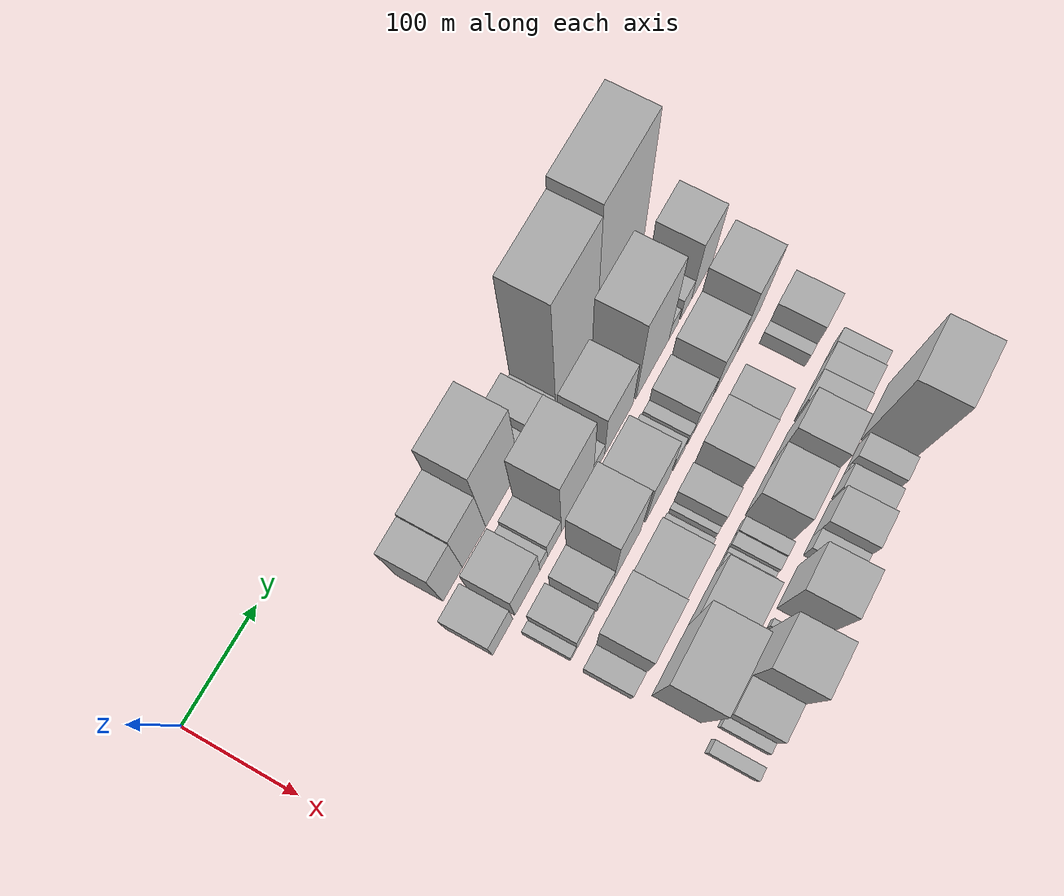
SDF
<sdf version="1.6">
 <world name="default">
  <model name="building_33">
   <static>1</static>
   <pose>100.0000 183.3700 0 0.000000 0.000000 0.000000</pose>
   <link name="link">
    <pose>0 0 48.00 0 0 0</pose>
    <collision name="collision"><geometry><box><size>40.0000 28.8230 96.0000</size></box></geometry></collision>
    <visual name="visual">
     <cast_shadows>0</cast_shadows>
     <geometry><box><size>40.0000 28.8230 96.0000</size></box></geometry>
     <material>
      <script>
       <uri>model://HANNAS_wall/materials/scripts</uri>
       <uri>model://HANNAS_wall/materials/textures</uri>
       <name>vrc/HANNAS_wall</name>
      </script>
     </material>
    </visual>
   </link>
  </model>
  <model name="building_34">
   <static>1</static>
   <pose>100.0000 215.3747 0 0.000000 0.000000 0.000000</pose>
   <link name="link">
    <pose>0 0 51.00 0 0 0</pose>
    <collision name="collision"><geometry><box><size>40.0000 35.1864 102.0000</size></box></geometry></collision>
    <visual name="visual">
     <cast_shadows>0</cast_shadows>
     <geometry><box><size>40.0000 35.1864 102.0000</size></box></geometry>
     <material>
      <script>
       <uri>model://HANNAS_wall/materials/scripts</uri>
       <uri>model://HANNAS_wall/materials/textures</uri>
       <name>vrc/HANNAS_wall</name>
      </script>
     </material>
    </visual>
   </link>
  </model>
  <model name="building_35">
   <static>1</static>
   <pose>100.0000 258.9601 0 0.000000 0.000000 0.000000</pose>
   <link name="link">
    <pose>0 0 75.00 0 0 0</pose>
    <collision name="collision"><geometry><box><size>40.0000 51.9845 150.0000</size></box></geometry></collision>
    <visual name="visual">
     <cast_shadows>0</cast_shadows>
     <geometry><box><size>40.0000 51.9845 150.0000</size></box></geometry>
     <material>
      <script>
       <uri>model://HANNAS_wall/materials/scripts</uri>
       <uri>model://HANNAS_wall/materials/textures</uri>
       <name>vrc/HANNAS_wall</name>
      </script>
     </material>
    </visual>
   </link>
  </model>
  <model name="building_36">
   <static>1</static>
   <pose>100.0000 292.0350 0 0.000000 0.000000 0.000000</pose>
   <link name="link">
    <pose>0 0 7.50 0 0 0</pose>
    <collision name="collision"><geometry><box><size>40.0000 6.1653 15.0000</size></box></geometry></collision>
    <visual name="visual">
     <cast_shadows>0</cast_shadows>
     <geometry><box><size>40.0000 6.1653 15.0000</size></box></geometry>
     <material>
      <script>
       <uri>model://HANNAS_wall/materials/scripts</uri>
       <uri>model://HANNAS_wall/materials/textures</uri>
       <name>vrc/HANNAS_wall</name>
      </script>
     </material>
    </visual>
   </link>
  </model>
  <model name="building_37">
   <static>1</static>
   <pose>100.0000 300.3955 0 0.000000 0.000000 0.000000</pose>
   <link name="link">
    <pose>0 0 12.00 0 0 0</pose>
    <collision name="collision"><geometry><box><size>40.0000 10.5556 24.0000</size></box></geometry></collision>
    <visual name="visual">
     <cast_shadows>0</cast_shadows>
     <geometry><box><size>40.0000 10.5556 24.0000</size></box></geometry>
     <material>
      <script>
       <uri>model://HANNAS_wall/materials/scripts</uri>
       <uri>model://HANNAS_wall/materials/textures</uri>
       <name>vrc/HANNAS_wall</name>
      </script>
     </material>
    </visual>
   </link>
  </model>
  <model name="building_38">
   <static>1</static>
   <pose>100.0000 318.9849 0 0.000000 0.000000 0.000000</pose>
   <link name="link">
    <pose>0 0 24.00 0 0 0</pose>
    <collision name="collision"><geometry><box><size>40.0000 26.6233 48.0000</size></box></geometry></collision>
    <visual name="visual">
     <cast_shadows>0</cast_shadows>
     <geometry><box><size>40.0000 26.6233 48.0000</size></box></geometry>
     <material>
      <script>
       <uri>model://HANNAS_wall/materials/scripts</uri>
       <uri>model://HANNAS_wall/materials/textures</uri>
       <name>vrc/HANNAS_wall</name>
      </script>
     </material>
    </visual>
   </link>
  </model>
  <model name="building_39">
   <static>1</static>
   <pose>100.0000 337.2926 0 0.000000 0.000000 0.000000</pose>
   <link name="link">
    <pose>0 0 10.50 0 0 0</pose>
    <collision name="collision"><geometry><box><size>40.0000 9.9919 21.0000</size></box></geometry></collision>
    <visual name="visual">
     <cast_shadows>0</cast_shadows>
     <geometry><box><size>40.0000 9.9919 21.0000</size></box></geometry>
     <material>
      <script>
       <uri>model://HANNAS_wall/materials/scripts</uri>
       <uri>model://HANNAS_wall/materials/textures</uri>
       <name>vrc/HANNAS_wall</name>
      </script>
     </material>
    </visual>
   </link>
  </model>
  <model name="building_40">
   <static>1</static>
   <pose>100.0000 375.6678 0 0.000000 0.000000 0.000000</pose>
   <link name="link">
    <pose>0 0 99.00 0 0 0</pose>
    <collision name="collision"><geometry><box><size>40.0000 66.7586 198.0000</size></box></geometry></collision>
    <visual name="visual">
     <cast_shadows>0</cast_shadows>
     <geometry><box><size>40.0000 66.7586 198.0000</size></box></geometry>
     <material>
      <script>
       <uri>model://HANNAS_wall/materials/scripts</uri>
       <uri>model://HANNAS_wall/materials/textures</uri>
       <name>vrc/HANNAS_wall</name>
      </script>
     </material>
    </visual>
   </link>
  </model>
  <model name="building_41">
   <static>1</static>
   <pose>100.0000 446.9654 0 0.000000 0.000000 0.000000</pose>
   <link name="link">
    <pose>0 0 106.50 0 0 0</pose>
    <collision name="collision"><geometry><box><size>40.0000 75.8365 213.0000</size></box></geometry></collision>
    <visual name="visual">
     <cast_shadows>0</cast_shadows>
     <geometry><box><size>40.0000 75.8365 213.0000</size></box></geometry>
     <material>
      <script>
       <uri>model://HANNAS_wall/materials/scripts</uri>
       <uri>model://HANNAS_wall/materials/textures</uri>
       <name>vrc/HANNAS_wall</name>
      </script>
     </material>
    </visual>
   </link>
  </model>
  <model name="building_83">
   <static>1</static>
   <pose>152.0000 167.3471 0 0.000000 0.000000 0.000000</pose>
   <link name="link">
    <pose>0 0 25.50 0 0 0</pose>
    <collision name="collision"><geometry><box><size>40.0000 30.2939 51.0000</size></box></geometry></collision>
    <visual name="visual">
     <cast_shadows>0</cast_shadows>
     <geometry><box><size>40.0000 30.2939 51.0000</size></box></geometry>
     <material>
      <script>
       <uri>model://HANNAS_wall/materials/scripts</uri>
       <uri>model://HANNAS_wall/materials/textures</uri>
       <name>vrc/HANNAS_wall</name>
      </script>
     </material>
    </visual>
   </link>
  </model>
  <model name="building_84">
   <static>1</static>
   <pose>152.0000 204.5459 0 0.000000 0.000000 0.000000</pose>
   <link name="link">
    <pose>0 0 33.00 0 0 0</pose>
    <collision name="collision"><geometry><box><size>40.0000 38.1037 66.0000</size></box></geometry></collision>
    <visual name="visual">
     <cast_shadows>0</cast_shadows>
     <geometry><box><size>40.0000 38.1037 66.0000</size></box></geometry>
     <material>
      <script>
       <uri>model://HANNAS_wall/materials/scripts</uri>
       <uri>model://HANNAS_wall/materials/textures</uri>
       <name>vrc/HANNAS_wall</name>
      </script>
     </material>
    </visual>
   </link>
  </model>
  <model name="building_85">
   <static>1</static>
   <pose>152.0000 229.5717 0 0.000000 0.000000 0.000000</pose>
   <link name="link">
    <pose>0 0 13.50 0 0 0</pose>
    <collision name="collision"><geometry><box><size>40.0000 11.9478 27.0000</size></box></geometry></collision>
    <visual name="visual">
     <cast_shadows>0</cast_shadows>
     <geometry><box><size>40.0000 11.9478 27.0000</size></box></geometry>
     <material>
      <script>
       <uri>model://HANNAS_wall/materials/scripts</uri>
       <uri>model://HANNAS_wall/materials/textures</uri>
       <name>vrc/HANNAS_wall</name>
      </script>
     </material>
    </visual>
   </link>
  </model>
  <model name="building_86">
   <static>1</static>
   <pose>152.0000 246.4050 0 0.000000 0.000000 0.000000</pose>
   <link name="link">
    <pose>0 0 19.50 0 0 0</pose>
    <collision name="collision"><geometry><box><size>40.0000 21.7189 39.0000</size></box></geometry></collision>
    <visual name="visual">
     <cast_shadows>0</cast_shadows>
     <geometry><box><size>40.0000 21.7189 39.0000</size></box></geometry>
     <material>
      <script>
       <uri>model://HANNAS_wall/materials/scripts</uri>
       <uri>model://HANNAS_wall/materials/textures</uri>
       <name>vrc/HANNAS_wall</name>
      </script>
     </material>
    </visual>
   </link>
  </model>
  <model name="building_87">
   <static>1</static>
   <pose>152.0000 282.4956 0 0.000000 0.000000 0.000000</pose>
   <link name="link">
    <pose>0 0 69.00 0 0 0</pose>
    <collision name="collision"><geometry><box><size>40.0000 50.4623 138.0000</size></box></geometry></collision>
    <visual name="visual">
     <cast_shadows>0</cast_shadows>
     <geometry><box><size>40.0000 50.4623 138.0000</size></box></geometry>
     <material>
      <script>
       <uri>model://HANNAS_wall/materials/scripts</uri>
       <uri>model://HANNAS_wall/materials/textures</uri>
       <name>vrc/HANNAS_wall</name>
      </script>
     </material>
    </visual>
   </link>
  </model>
  <model name="building_88">
   <static>1</static>
   <pose>152.0000 316.6638 0 0.000000 0.000000 0.000000</pose>
   <link name="link">
    <pose>0 0 15.00 0 0 0</pose>
    <collision name="collision"><geometry><box><size>40.0000 17.8741 30.0000</size></box></geometry></collision>
    <visual name="visual">
     <cast_shadows>0</cast_shadows>
     <geometry><box><size>40.0000 17.8741 30.0000</size></box></geometry>
     <material>
      <script>
       <uri>model://HANNAS_wall/materials/scripts</uri>
       <uri>model://HANNAS_wall/materials/textures</uri>
       <name>vrc/HANNAS_wall</name>
      </script>
     </material>
    </visual>
   </link>
  </model>
  <model name="building_89">
   <static>1</static>
   <pose>152.0000 349.0598 0 0.000000 0.000000 0.000000</pose>
   <link name="link">
    <pose>0 0 45.00 0 0 0</pose>
    <collision name="collision"><geometry><box><size>40.0000 46.9179 90.0000</size></box></geometry></collision>
    <visual name="visual">
     <cast_shadows>0</cast_shadows>
     <geometry><box><size>40.0000 46.9179 90.0000</size></box></geometry>
     <material>
      <script>
       <uri>model://HANNAS_wall/materials/scripts</uri>
       <uri>model://HANNAS_wall/materials/textures</uri>
       <name>vrc/HANNAS_wall</name>
      </script>
     </material>
    </visual>
   </link>
  </model>
  <model name="building_90">
   <static>1</static>
   <pose>152.0000 405.3010 0 0.000000 0.000000 0.000000</pose>
   <link name="link">
    <pose>0 0 75.00 0 0 0</pose>
    <collision name="collision"><geometry><box><size>40.0000 55.5645 150.0000</size></box></geometry></collision>
    <visual name="visual">
     <cast_shadows>0</cast_shadows>
     <geometry><box><size>40.0000 55.5645 150.0000</size></box></geometry>
     <material>
      <script>
       <uri>model://HANNAS_wall/materials/scripts</uri>
       <uri>model://HANNAS_wall/materials/textures</uri>
       <name>vrc/HANNAS_wall</name>
      </script>
     </material>
    </visual>
   </link>
  </model>
  <model name="building_91">
   <static>1</static>
   <pose>152.0000 441.0005 0 0.000000 0.000000 0.000000</pose>
   <link name="link">
    <pose>0 0 15.00 0 0 0</pose>
    <collision name="collision"><geometry><box><size>40.0000 15.8345 30.0000</size></box></geometry></collision>
    <visual name="visual">
     <cast_shadows>0</cast_shadows>
     <geometry><box><size>40.0000 15.8345 30.0000</size></box></geometry>
     <material>
      <script>
       <uri>model://HANNAS_wall/materials/scripts</uri>
       <uri>model://HANNAS_wall/materials/textures</uri>
       <name>vrc/HANNAS_wall</name>
      </script>
     </material>
    </visual>
   </link>
  </model>
  <model name="building_92">
   <static>1</static>
   <pose>152.0000 462.5650 0 0.000000 0.000000 0.000000</pose>
   <link name="link">
    <pose>0 0 18.00 0 0 0</pose>
    <collision name="collision"><geometry><box><size>40.0000 19.2944 36.0000</size></box></geometry></collision>
    <visual name="visual">
     <cast_shadows>0</cast_shadows>
     <geometry><box><size>40.0000 19.2944 36.0000</size></box></geometry>
     <material>
      <script>
       <uri>model://HANNAS_wall/materials/scripts</uri>
       <uri>model://HANNAS_wall/materials/textures</uri>
       <name>vrc/HANNAS_wall</name>
      </script>
     </material>
    </visual>
   </link>
  </model>
  <model name="building_93">
   <static>1</static>
   <pose>152.0000 490.9199 0 0.000000 0.000000 0.000000</pose>
   <link name="link">
    <pose>0 0 48.00 0 0 0</pose>
    <collision name="collision"><geometry><box><size>40.0000 37.4153 96.0000</size></box></geometry></collision>
    <visual name="visual">
     <cast_shadows>0</cast_shadows>
     <geometry><box><size>40.0000 37.4153 96.0000</size></box></geometry>
     <material>
      <script>
       <uri>model://HANNAS_wall/materials/scripts</uri>
       <uri>model://HANNAS_wall/materials/textures</uri>
       <name>vrc/HANNAS_wall</name>
      </script>
     </material>
    </visual>
   </link>
  </model>
  <model name="building_138">
   <static>1</static>
   <pose>204.0000 180.7078 0 0.000000 0.000000 0.000000</pose>
   <link name="link">
    <pose>0 0 10.50 0 0 0</pose>
    <collision name="collision"><geometry><box><size>40.0000 9.3781 21.0000</size></box></geometry></collision>
    <visual name="visual">
     <cast_shadows>0</cast_shadows>
     <geometry><box><size>40.0000 9.3781 21.0000</size></box></geometry>
     <material>
      <script>
       <uri>model://HANNAS_wall/materials/scripts</uri>
       <uri>model://HANNAS_wall/materials/textures</uri>
       <name>vrc/HANNAS_wall</name>
      </script>
     </material>
    </visual>
   </link>
  </model>
  <model name="building_139">
   <static>1</static>
   <pose>204.0000 198.6569 0 0.000000 0.000000 0.000000</pose>
   <link name="link">
    <pose>0 0 24.00 0 0 0</pose>
    <collision name="collision"><geometry><box><size>40.0000 26.5200 48.0000</size></box></geometry></collision>
    <visual name="visual">
     <cast_shadows>0</cast_shadows>
     <geometry><box><size>40.0000 26.5200 48.0000</size></box></geometry>
     <material>
      <script>
       <uri>model://HANNAS_wall/materials/scripts</uri>
       <uri>model://HANNAS_wall/materials/textures</uri>
       <name>vrc/HANNAS_wall</name>
      </script>
     </material>
    </visual>
   </link>
  </model>
  <model name="building_140">
   <static>1</static>
   <pose>204.0000 229.8392 0 0.000000 0.000000 0.000000</pose>
   <link name="link">
    <pose>0 0 24.00 0 0 0</pose>
    <collision name="collision"><geometry><box><size>40.0000 25.8447 48.0000</size></box></geometry></collision>
    <visual name="visual">
     <cast_shadows>0</cast_shadows>
     <geometry><box><size>40.0000 25.8447 48.0000</size></box></geometry>
     <material>
      <script>
       <uri>model://HANNAS_wall/materials/scripts</uri>
       <uri>model://HANNAS_wall/materials/textures</uri>
       <name>vrc/HANNAS_wall</name>
      </script>
     </material>
    </visual>
   </link>
  </model>
  <model name="building_141">
   <static>1</static>
   <pose>204.0000 264.4825 0 0.000000 0.000000 0.000000</pose>
   <link name="link">
    <pose>0 0 67.50 0 0 0</pose>
    <collision name="collision"><geometry><box><size>40.0000 43.4417 135.0000</size></box></geometry></collision>
    <visual name="visual">
     <cast_shadows>0</cast_shadows>
     <geometry><box><size>40.0000 43.4417 135.0000</size></box></geometry>
     <material>
      <script>
       <uri>model://HANNAS_wall/materials/scripts</uri>
       <uri>model://HANNAS_wall/materials/textures</uri>
       <name>vrc/HANNAS_wall</name>
      </script>
     </material>
    </visual>
   </link>
  </model>
  <model name="building_142">
   <static>1</static>
   <pose>204.0000 313.6760 0 0.000000 0.000000 0.000000</pose>
   <link name="link">
    <pose>0 0 51.00 0 0 0</pose>
    <collision name="collision"><geometry><box><size>40.0000 38.9453 102.0000</size></box></geometry></collision>
    <visual name="visual">
     <cast_shadows>0</cast_shadows>
     <geometry><box><size>40.0000 38.9453 102.0000</size></box></geometry>
     <material>
      <script>
       <uri>model://HANNAS_wall/materials/scripts</uri>
       <uri>model://HANNAS_wall/materials/textures</uri>
       <name>vrc/HANNAS_wall</name>
      </script>
     </material>
    </visual>
   </link>
  </model>
  <model name="building_143">
   <static>1</static>
   <pose>204.0000 349.3951 0 0.000000 0.000000 0.000000</pose>
   <link name="link">
    <pose>0 0 16.50 0 0 0</pose>
    <collision name="collision"><geometry><box><size>40.0000 18.4929 33.0000</size></box></geometry></collision>
    <visual name="visual">
     <cast_shadows>0</cast_shadows>
     <geometry><box><size>40.0000 18.4929 33.0000</size></box></geometry>
     <material>
      <script>
       <uri>model://HANNAS_wall/materials/scripts</uri>
       <uri>model://HANNAS_wall/materials/textures</uri>
       <name>vrc/HANNAS_wall</name>
      </script>
     </material>
    </visual>
   </link>
  </model>
  <model name="building_144">
   <static>1</static>
   <pose>204.0000 368.8841 0 0.000000 0.000000 0.000000</pose>
   <link name="link">
    <pose>0 0 12.00 0 0 0</pose>
    <collision name="collision"><geometry><box><size>40.0000 10.4852 24.0000</size></box></geometry></collision>
    <visual name="visual">
     <cast_shadows>0</cast_shadows>
     <geometry><box><size>40.0000 10.4852 24.0000</size></box></geometry>
     <material>
      <script>
       <uri>model://HANNAS_wall/materials/scripts</uri>
       <uri>model://HANNAS_wall/materials/textures</uri>
       <name>vrc/HANNAS_wall</name>
      </script>
     </material>
    </visual>
   </link>
  </model>
  <model name="building_145">
   <static>1</static>
   <pose>204.0000 389.3568 0 0.000000 0.000000 0.000000</pose>
   <link name="link">
    <pose>0 0 25.50 0 0 0</pose>
    <collision name="collision"><geometry><box><size>40.0000 30.4602 51.0000</size></box></geometry></collision>
    <visual name="visual">
     <cast_shadows>0</cast_shadows>
     <geometry><box><size>40.0000 30.4602 51.0000</size></box></geometry>
     <material>
      <script>
       <uri>model://HANNAS_wall/materials/scripts</uri>
       <uri>model://HANNAS_wall/materials/textures</uri>
       <name>vrc/HANNAS_wall</name>
      </script>
     </material>
    </visual>
   </link>
  </model>
  <model name="building_146">
   <static>1</static>
   <pose>204.0000 427.8797 0 0.000000 0.000000 0.000000</pose>
   <link name="link">
    <pose>0 0 39.00 0 0 0</pose>
    <collision name="collision"><geometry><box><size>40.0000 40.5856 78.0000</size></box></geometry></collision>
    <visual name="visual">
     <cast_shadows>0</cast_shadows>
     <geometry><box><size>40.0000 40.5856 78.0000</size></box></geometry>
     <material>
      <script>
       <uri>model://HANNAS_wall/materials/scripts</uri>
       <uri>model://HANNAS_wall/materials/textures</uri>
       <name>vrc/HANNAS_wall</name>
      </script>
     </material>
    </visual>
   </link>
  </model>
  <model name="building_147">
   <static>1</static>
   <pose>204.0000 468.9726 0 0.000000 0.000000 0.000000</pose>
   <link name="link">
    <pose>0 0 58.50 0 0 0</pose>
    <collision name="collision"><geometry><box><size>40.0000 41.6001 117.0000</size></box></geometry></collision>
    <visual name="visual">
     <cast_shadows>0</cast_shadows>
     <geometry><box><size>40.0000 41.6001 117.0000</size></box></geometry>
     <material>
      <script>
       <uri>model://HANNAS_wall/materials/scripts</uri>
       <uri>model://HANNAS_wall/materials/textures</uri>
       <name>vrc/HANNAS_wall</name>
      </script>
     </material>
    </visual>
   </link>
  </model>
  <model name="building_190">
   <static>1</static>
   <pose>256.0000 182.9187 0 0.000000 0.000000 0.000000</pose>
   <link name="link">
    <pose>0 0 18.00 0 0 0</pose>
    <collision name="collision"><geometry><box><size>40.0000 19.2936 36.0000</size></box></geometry></collision>
    <visual name="visual">
     <cast_shadows>0</cast_shadows>
     <geometry><box><size>40.0000 19.2936 36.0000</size></box></geometry>
     <material>
      <script>
       <uri>model://HANNAS_wall/materials/scripts</uri>
       <uri>model://HANNAS_wall/materials/textures</uri>
       <name>vrc/HANNAS_wall</name>
      </script>
     </material>
    </visual>
   </link>
  </model>
  <model name="building_191">
   <static>1</static>
   <pose>256.0000 215.4384 0 0.000000 0.000000 0.000000</pose>
   <link name="link">
    <pose>0 0 58.50 0 0 0</pose>
    <collision name="collision"><geometry><box><size>40.0000 45.7456 117.0000</size></box></geometry></collision>
    <visual name="visual">
     <cast_shadows>0</cast_shadows>
     <geometry><box><size>40.0000 45.7456 117.0000</size></box></geometry>
     <material>
      <script>
       <uri>model://HANNAS_wall/materials/scripts</uri>
       <uri>model://HANNAS_wall/materials/textures</uri>
       <name>vrc/HANNAS_wall</name>
      </script>
     </material>
    </visual>
   </link>
  </model>
  <model name="building_192">
   <static>1</static>
   <pose>256.0000 261.5136 0 0.000000 0.000000 0.000000</pose>
   <link name="link">
    <pose>0 0 43.50 0 0 0</pose>
    <collision name="collision"><geometry><box><size>40.0000 46.4049 87.0000</size></box></geometry></collision>
    <visual name="visual">
     <cast_shadows>0</cast_shadows>
     <geometry><box><size>40.0000 46.4049 87.0000</size></box></geometry>
     <material>
      <script>
       <uri>model://HANNAS_wall/materials/scripts</uri>
       <uri>model://HANNAS_wall/materials/textures</uri>
       <name>vrc/HANNAS_wall</name>
      </script>
     </material>
    </visual>
   </link>
  </model>
  <model name="building_193">
   <static>1</static>
   <pose>256.0000 293.3742 0 0.000000 0.000000 0.000000</pose>
   <link name="link">
    <pose>0 0 15.00 0 0 0</pose>
    <collision name="collision"><geometry><box><size>40.0000 17.3163 30.0000</size></box></geometry></collision>
    <visual name="visual">
     <cast_shadows>0</cast_shadows>
     <geometry><box><size>40.0000 17.3163 30.0000</size></box></geometry>
     <material>
      <script>
       <uri>model://HANNAS_wall/materials/scripts</uri>
       <uri>model://HANNAS_wall/materials/textures</uri>
       <name>vrc/HANNAS_wall</name>
      </script>
     </material>
    </visual>
   </link>
  </model>
  <model name="building_194">
   <static>1</static>
   <pose>256.0000 312.1446 0 0.000000 0.000000 0.000000</pose>
   <link name="link">
    <pose>0 0 7.50 0 0 0</pose>
    <collision name="collision"><geometry><box><size>40.0000 6.2244 15.0000</size></box></geometry></collision>
    <visual name="visual">
     <cast_shadows>0</cast_shadows>
     <geometry><box><size>40.0000 6.2244 15.0000</size></box></geometry>
     <material>
      <script>
       <uri>model://HANNAS_wall/materials/scripts</uri>
       <uri>model://HANNAS_wall/materials/textures</uri>
       <name>vrc/HANNAS_wall</name>
      </script>
     </material>
    </visual>
   </link>
  </model>
  <model name="building_195">
   <static>1</static>
   <pose>256.0000 327.7024 0 0.000000 0.000000 0.000000</pose>
   <link name="link">
    <pose>0 0 24.00 0 0 0</pose>
    <collision name="collision"><geometry><box><size>40.0000 24.8911 48.0000</size></box></geometry></collision>
    <visual name="visual">
     <cast_shadows>0</cast_shadows>
     <geometry><box><size>40.0000 24.8911 48.0000</size></box></geometry>
     <material>
      <script>
       <uri>model://HANNAS_wall/materials/scripts</uri>
       <uri>model://HANNAS_wall/materials/textures</uri>
       <name>vrc/HANNAS_wall</name>
      </script>
     </material>
    </visual>
   </link>
  </model>
  <model name="building_196">
   <static>1</static>
   <pose>256.0000 369.9938 0 0.000000 0.000000 0.000000</pose>
   <link name="link">
    <pose>0 0 36.00 0 0 0</pose>
    <collision name="collision"><geometry><box><size>40.0000 39.6917 72.0000</size></box></geometry></collision>
    <visual name="visual">
     <cast_shadows>0</cast_shadows>
     <geometry><box><size>40.0000 39.6917 72.0000</size></box></geometry>
     <material>
      <script>
       <uri>model://HANNAS_wall/materials/scripts</uri>
       <uri>model://HANNAS_wall/materials/textures</uri>
       <name>vrc/HANNAS_wall</name>
      </script>
     </material>
    </visual>
   </link>
  </model>
  <model name="building_197">
   <static>1</static>
   <pose>256.0000 405.9431 0 0.000000 0.000000 0.000000</pose>
   <link name="link">
    <pose>0 0 28.50 0 0 0</pose>
    <collision name="collision"><geometry><box><size>40.0000 32.2069 57.0000</size></box></geometry></collision>
    <visual name="visual">
     <cast_shadows>0</cast_shadows>
     <geometry><box><size>40.0000 32.2069 57.0000</size></box></geometry>
     <material>
      <script>
       <uri>model://HANNAS_wall/materials/scripts</uri>
       <uri>model://HANNAS_wall/materials/textures</uri>
       <name>vrc/HANNAS_wall</name>
      </script>
     </material>
    </visual>
   </link>
  </model>
  <model name="building_198">
   <static>1</static>
   <pose>256.0000 470.3262 0 0.000000 0.000000 0.000000</pose>
   <link name="link">
    <pose>0 0 12.00 0 0 0</pose>
    <collision name="collision"><geometry><box><size>40.0000 10.8531 24.0000</size></box></geometry></collision>
    <visual name="visual">
     <cast_shadows>0</cast_shadows>
     <geometry><box><size>40.0000 10.8531 24.0000</size></box></geometry>
     <material>
      <script>
       <uri>model://HANNAS_wall/materials/scripts</uri>
       <uri>model://HANNAS_wall/materials/textures</uri>
       <name>vrc/HANNAS_wall</name>
      </script>
     </material>
    </visual>
   </link>
  </model>
  <model name="building_199">
   <static>1</static>
   <pose>256.0000 491.2741 0 0.000000 0.000000 0.000000</pose>
   <link name="link">
    <pose>0 0 28.50 0 0 0</pose>
    <collision name="collision"><geometry><box><size>40.0000 31.0426 57.0000</size></box></geometry></collision>
    <visual name="visual">
     <cast_shadows>0</cast_shadows>
     <geometry><box><size>40.0000 31.0426 57.0000</size></box></geometry>
     <material>
      <script>
       <uri>model://HANNAS_wall/materials/scripts</uri>
       <uri>model://HANNAS_wall/materials/textures</uri>
       <name>vrc/HANNAS_wall</name>
      </script>
     </material>
    </visual>
   </link>
  </model>
  <model name="building_238">
   <static>1</static>
   <pose>308.0000 211.2537 0 0.000000 0.000000 0.000000</pose>
   <link name="link">
    <pose>0 0 75.00 0 0 0</pose>
    <collision name="collision"><geometry><box><size>40.0000 57.3962 150.0000</size></box></geometry></collision>
    <visual name="visual">
     <cast_shadows>0</cast_shadows>
     <geometry><box><size>40.0000 57.3962 150.0000</size></box></geometry>
     <material>
      <script>
       <uri>model://HANNAS_wall/materials/scripts</uri>
       <uri>model://HANNAS_wall/materials/textures</uri>
       <name>vrc/HANNAS_wall</name>
      </script>
     </material>
    </visual>
   </link>
  </model>
  <model name="building_239">
   <static>1</static>
   <pose>308.0000 262.6174 0 0.000000 0.000000 0.000000</pose>
   <link name="link">
    <pose>0 0 40.50 0 0 0</pose>
    <collision name="collision"><geometry><box><size>40.0000 45.3313 81.0000</size></box></geometry></collision>
    <visual name="visual">
     <cast_shadows>0</cast_shadows>
     <geometry><box><size>40.0000 45.3313 81.0000</size></box></geometry>
     <material>
      <script>
       <uri>model://HANNAS_wall/materials/scripts</uri>
       <uri>model://HANNAS_wall/materials/textures</uri>
       <name>vrc/HANNAS_wall</name>
      </script>
     </material>
    </visual>
   </link>
  </model>
  <model name="building_240">
   <static>1</static>
   <pose>308.0000 291.5084 0 0.000000 0.000000 0.000000</pose>
   <link name="link">
    <pose>0 0 13.50 0 0 0</pose>
    <collision name="collision"><geometry><box><size>40.0000 12.4506 27.0000</size></box></geometry></collision>
    <visual name="visual">
     <cast_shadows>0</cast_shadows>
     <geometry><box><size>40.0000 12.4506 27.0000</size></box></geometry>
     <material>
      <script>
       <uri>model://HANNAS_wall/materials/scripts</uri>
       <uri>model://HANNAS_wall/materials/textures</uri>
       <name>vrc/HANNAS_wall</name>
      </script>
     </material>
    </visual>
   </link>
  </model>
  <model name="building_241">
   <static>1</static>
   <pose>308.0000 301.3677 0 0.000000 0.000000 0.000000</pose>
   <link name="link">
    <pose>0 0 7.50 0 0 0</pose>
    <collision name="collision"><geometry><box><size>40.0000 7.2680 15.0000</size></box></geometry></collision>
    <visual name="visual">
     <cast_shadows>0</cast_shadows>
     <geometry><box><size>40.0000 7.2680 15.0000</size></box></geometry>
     <material>
      <script>
       <uri>model://HANNAS_wall/materials/scripts</uri>
       <uri>model://HANNAS_wall/materials/textures</uri>
       <name>vrc/HANNAS_wall</name>
      </script>
     </material>
    </visual>
   </link>
  </model>
  <model name="building_242">
   <static>1</static>
   <pose>308.0000 310.6025 0 0.000000 0.000000 0.000000</pose>
   <link name="link">
    <pose>0 0 12.00 0 0 0</pose>
    <collision name="collision"><geometry><box><size>40.0000 11.2017 24.0000</size></box></geometry></collision>
    <visual name="visual">
     <cast_shadows>0</cast_shadows>
     <geometry><box><size>40.0000 11.2017 24.0000</size></box></geometry>
     <material>
      <script>
       <uri>model://HANNAS_wall/materials/scripts</uri>
       <uri>model://HANNAS_wall/materials/textures</uri>
       <name>vrc/HANNAS_wall</name>
      </script>
     </material>
    </visual>
   </link>
  </model>
  <model name="building_243">
   <static>1</static>
   <pose>308.0000 322.2729 0 0.000000 0.000000 0.000000</pose>
   <link name="link">
    <pose>0 0 13.50 0 0 0</pose>
    <collision name="collision"><geometry><box><size>40.0000 12.1390 27.0000</size></box></geometry></collision>
    <visual name="visual">
     <cast_shadows>0</cast_shadows>
     <geometry><box><size>40.0000 12.1390 27.0000</size></box></geometry>
     <material>
      <script>
       <uri>model://HANNAS_wall/materials/scripts</uri>
       <uri>model://HANNAS_wall/materials/textures</uri>
       <name>vrc/HANNAS_wall</name>
      </script>
     </material>
    </visual>
   </link>
  </model>
  <model name="building_244">
   <static>1</static>
   <pose>308.0000 356.4693 0 0.000000 0.000000 0.000000</pose>
   <link name="link">
    <pose>0 0 37.50 0 0 0</pose>
    <collision name="collision"><geometry><box><size>40.0000 42.2540 75.0000</size></box></geometry></collision>
    <visual name="visual">
     <cast_shadows>0</cast_shadows>
     <geometry><box><size>40.0000 42.2540 75.0000</size></box></geometry>
     <material>
      <script>
       <uri>model://HANNAS_wall/materials/scripts</uri>
       <uri>model://HANNAS_wall/materials/textures</uri>
       <name>vrc/HANNAS_wall</name>
      </script>
     </material>
    </visual>
   </link>
  </model>
  <model name="building_245">
   <static>1</static>
   <pose>308.0000 393.9477 0 0.000000 0.000000 0.000000</pose>
   <link name="link">
    <pose>0 0 54.00 0 0 0</pose>
    <collision name="collision"><geometry><box><size>40.0000 32.7027 108.0000</size></box></geometry></collision>
    <visual name="visual">
     <cast_shadows>0</cast_shadows>
     <geometry><box><size>40.0000 32.7027 108.0000</size></box></geometry>
     <material>
      <script>
       <uri>model://HANNAS_wall/materials/scripts</uri>
       <uri>model://HANNAS_wall/materials/textures</uri>
       <name>vrc/HANNAS_wall</name>
      </script>
     </material>
    </visual>
   </link>
  </model>
  <model name="building_246">
   <static>1</static>
   <pose>308.0000 433.9229 0 0.000000 0.000000 0.000000</pose>
   <link name="link">
    <pose>0 0 27.00 0 0 0</pose>
    <collision name="collision"><geometry><box><size>40.0000 27.2478 54.0000</size></box></geometry></collision>
    <visual name="visual">
     <cast_shadows>0</cast_shadows>
     <geometry><box><size>40.0000 27.2478 54.0000</size></box></geometry>
     <material>
      <script>
       <uri>model://HANNAS_wall/materials/scripts</uri>
       <uri>model://HANNAS_wall/materials/textures</uri>
       <name>vrc/HANNAS_wall</name>
      </script>
     </material>
    </visual>
   </link>
  </model>
  <model name="building_247">
   <static>1</static>
   <pose>308.0000 461.0307 0 0.000000 0.000000 0.000000</pose>
   <link name="link">
    <pose>0 0 24.00 0 0 0</pose>
    <collision name="collision"><geometry><box><size>40.0000 26.9679 48.0000</size></box></geometry></collision>
    <visual name="visual">
     <cast_shadows>0</cast_shadows>
     <geometry><box><size>40.0000 26.9679 48.0000</size></box></geometry>
     <material>
      <script>
       <uri>model://HANNAS_wall/materials/scripts</uri>
       <uri>model://HANNAS_wall/materials/textures</uri>
       <name>vrc/HANNAS_wall</name>
      </script>
     </material>
    </visual>
   </link>
  </model>
  <model name="building_248">
   <static>1</static>
   <pose>308.0000 483.6087 0 0.000000 0.000000 0.000000</pose>
   <link name="link">
    <pose>0 0 18.00 0 0 0</pose>
    <collision name="collision"><geometry><box><size>40.0000 18.1880 36.0000</size></box></geometry></collision>
    <visual name="visual">
     <cast_shadows>0</cast_shadows>
     <geometry><box><size>40.0000 18.1880 36.0000</size></box></geometry>
     <material>
      <script>
       <uri>model://HANNAS_wall/materials/scripts</uri>
       <uri>model://HANNAS_wall/materials/textures</uri>
       <name>vrc/HANNAS_wall</name>
      </script>
     </material>
    </visual>
   </link>
  </model>
  <model name="building_289">
   <static>1</static>
   <pose>360.0000 170.3395 0 0.000000 0.000000 0.000000</pose>
   <link name="link">
    <pose>0 0 12.00 0 0 0</pose>
    <collision name="collision"><geometry><box><size>40.0000 10.5906 24.0000</size></box></geometry></collision>
    <visual name="visual">
     <cast_shadows>0</cast_shadows>
     <geometry><box><size>40.0000 10.5906 24.0000</size></box></geometry>
     <material>
      <script>
       <uri>model://HANNAS_wall/materials/scripts</uri>
       <uri>model://HANNAS_wall/materials/textures</uri>
       <name>vrc/HANNAS_wall</name>
      </script>
     </material>
    </visual>
   </link>
  </model>
  <model name="building_290">
   <static>1</static>
   <pose>360.0000 190.0109 0 0.000000 0.000000 0.000000</pose>
   <link name="link">
    <pose>0 0 9.00 0 0 0</pose>
    <collision name="collision"><geometry><box><size>40.0000 8.7522 18.0000</size></box></geometry></collision>
    <visual name="visual">
     <cast_shadows>0</cast_shadows>
     <geometry><box><size>40.0000 8.7522 18.0000</size></box></geometry>
     <material>
      <script>
       <uri>model://HANNAS_wall/materials/scripts</uri>
       <uri>model://HANNAS_wall/materials/textures</uri>
       <name>vrc/HANNAS_wall</name>
      </script>
     </material>
    </visual>
   </link>
  </model>
  <model name="building_291">
   <static>1</static>
   <pose>360.0000 209.1493 0 0.000000 0.000000 0.000000</pose>
   <link name="link">
    <pose>0 0 27.00 0 0 0</pose>
    <collision name="collision"><geometry><box><size>40.0000 29.5246 54.0000</size></box></geometry></collision>
    <visual name="visual">
     <cast_shadows>0</cast_shadows>
     <geometry><box><size>40.0000 29.5246 54.0000</size></box></geometry>
     <material>
      <script>
       <uri>model://HANNAS_wall/materials/scripts</uri>
       <uri>model://HANNAS_wall/materials/textures</uri>
       <name>vrc/HANNAS_wall</name>
      </script>
     </material>
    </visual>
   </link>
  </model>
  <model name="building_292">
   <static>1</static>
   <pose>360.0000 243.8619 0 0.000000 0.000000 0.000000</pose>
   <link name="link">
    <pose>0 0 63.00 0 0 0</pose>
    <collision name="collision"><geometry><box><size>40.0000 39.9006 126.0000</size></box></geometry></collision>
    <visual name="visual">
     <cast_shadows>0</cast_shadows>
     <geometry><box><size>40.0000 39.9006 126.0000</size></box></geometry>
     <material>
      <script>
       <uri>model://HANNAS_wall/materials/scripts</uri>
       <uri>model://HANNAS_wall/materials/textures</uri>
       <name>vrc/HANNAS_wall</name>
      </script>
     </material>
    </visual>
   </link>
  </model>
  <model name="building_293">
   <static>1</static>
   <pose>360.0000 269.9763 0 0.000000 0.000000 0.000000</pose>
   <link name="link">
    <pose>0 0 7.50 0 0 0</pose>
    <collision name="collision"><geometry><box><size>40.0000 6.3282 15.0000</size></box></geometry></collision>
    <visual name="visual">
     <cast_shadows>0</cast_shadows>
     <geometry><box><size>40.0000 6.3282 15.0000</size></box></geometry>
     <material>
      <script>
       <uri>model://HANNAS_wall/materials/scripts</uri>
       <uri>model://HANNAS_wall/materials/textures</uri>
       <name>vrc/HANNAS_wall</name>
      </script>
     </material>
    </visual>
   </link>
  </model>
  <model name="building_294">
   <static>1</static>
   <pose>360.0000 301.3427 0 0.000000 0.000000 0.000000</pose>
   <link name="link">
    <pose>0 0 51.00 0 0 0</pose>
    <collision name="collision"><geometry><box><size>40.0000 36.4047 102.0000</size></box></geometry></collision>
    <visual name="visual">
     <cast_shadows>0</cast_shadows>
     <geometry><box><size>40.0000 36.4047 102.0000</size></box></geometry>
     <material>
      <script>
       <uri>model://HANNAS_wall/materials/scripts</uri>
       <uri>model://HANNAS_wall/materials/textures</uri>
       <name>vrc/HANNAS_wall</name>
      </script>
     </material>
    </visual>
   </link>
  </model>
  <model name="building_295">
   <static>1</static>
   <pose>360.0000 336.8702 0 0.000000 0.000000 0.000000</pose>
   <link name="link">
    <pose>0 0 16.50 0 0 0</pose>
    <collision name="collision"><geometry><box><size>40.0000 16.6503 33.0000</size></box></geometry></collision>
    <visual name="visual">
     <cast_shadows>0</cast_shadows>
     <geometry><box><size>40.0000 16.6503 33.0000</size></box></geometry>
     <material>
      <script>
       <uri>model://HANNAS_wall/materials/scripts</uri>
       <uri>model://HANNAS_wall/materials/textures</uri>
       <name>vrc/HANNAS_wall</name>
      </script>
     </material>
    </visual>
   </link>
  </model>
  <model name="building_296">
   <static>1</static>
   <pose>360.0000 360.1354 0 0.000000 0.000000 0.000000</pose>
   <link name="link">
    <pose>0 0 28.50 0 0 0</pose>
    <collision name="collision"><geometry><box><size>40.0000 29.8800 57.0000</size></box></geometry></collision>
    <visual name="visual">
     <cast_shadows>0</cast_shadows>
     <geometry><box><size>40.0000 29.8800 57.0000</size></box></geometry>
     <material>
      <script>
       <uri>model://HANNAS_wall/materials/scripts</uri>
       <uri>model://HANNAS_wall/materials/textures</uri>
       <name>vrc/HANNAS_wall</name>
      </script>
     </material>
    </visual>
   </link>
  </model>
  <model name="building_297">
   <static>1</static>
   <pose>360.0000 388.4023 0 0.000000 0.000000 0.000000</pose>
   <link name="link">
    <pose>0 0 19.50 0 0 0</pose>
    <collision name="collision"><geometry><box><size>40.0000 20.6538 39.0000</size></box></geometry></collision>
    <visual name="visual">
     <cast_shadows>0</cast_shadows>
     <geometry><box><size>40.0000 20.6538 39.0000</size></box></geometry>
     <material>
      <script>
       <uri>model://HANNAS_wall/materials/scripts</uri>
       <uri>model://HANNAS_wall/materials/textures</uri>
       <name>vrc/HANNAS_wall</name>
      </script>
     </material>
    </visual>
   </link>
  </model>
  <model name="building_298">
   <static>1</static>
   <pose>360.0000 402.4528 0 0.000000 0.000000 0.000000</pose>
   <link name="link">
    <pose>0 0 7.50 0 0 0</pose>
    <collision name="collision"><geometry><box><size>40.0000 7.4473 15.0000</size></box></geometry></collision>
    <visual name="visual">
     <cast_shadows>0</cast_shadows>
     <geometry><box><size>40.0000 7.4473 15.0000</size></box></geometry>
     <material>
      <script>
       <uri>model://HANNAS_wall/materials/scripts</uri>
       <uri>model://HANNAS_wall/materials/textures</uri>
       <name>vrc/HANNAS_wall</name>
      </script>
     </material>
    </visual>
   </link>
  </model>
  <model name="building_299">
   <static>1</static>
   <pose>360.0000 416.3704 0 0.000000 0.000000 0.000000</pose>
   <link name="link">
    <pose>0 0 18.00 0 0 0</pose>
    <collision name="collision"><geometry><box><size>40.0000 20.3879 36.0000</size></box></geometry></collision>
    <visual name="visual">
     <cast_shadows>0</cast_shadows>
     <geometry><box><size>40.0000 20.3879 36.0000</size></box></geometry>
     <material>
      <script>
       <uri>model://HANNAS_wall/materials/scripts</uri>
       <uri>model://HANNAS_wall/materials/textures</uri>
       <name>vrc/HANNAS_wall</name>
      </script>
     </material>
    </visual>
   </link>
  </model>
  <model name="building_300">
   <static>1</static>
   <pose>360.0000 457.7483 0 0.000000 0.000000 0.000000</pose>
   <link name="link">
    <pose>0 0 70.50 0 0 0</pose>
    <collision name="collision"><geometry><box><size>40.0000 52.3679 141.0000</size></box></geometry></collision>
    <visual name="visual">
     <cast_shadows>0</cast_shadows>
     <geometry><box><size>40.0000 52.3679 141.0000</size></box></geometry>
     <material>
      <script>
       <uri>model://HANNAS_wall/materials/scripts</uri>
       <uri>model://HANNAS_wall/materials/textures</uri>
       <name>vrc/HANNAS_wall</name>
      </script>
     </material>
    </visual>
   </link>
  </model>
 </world>
</sdf>
